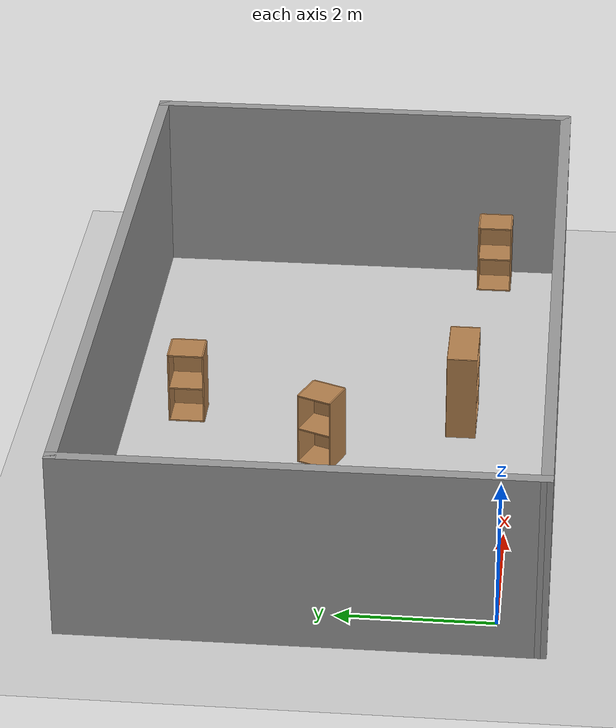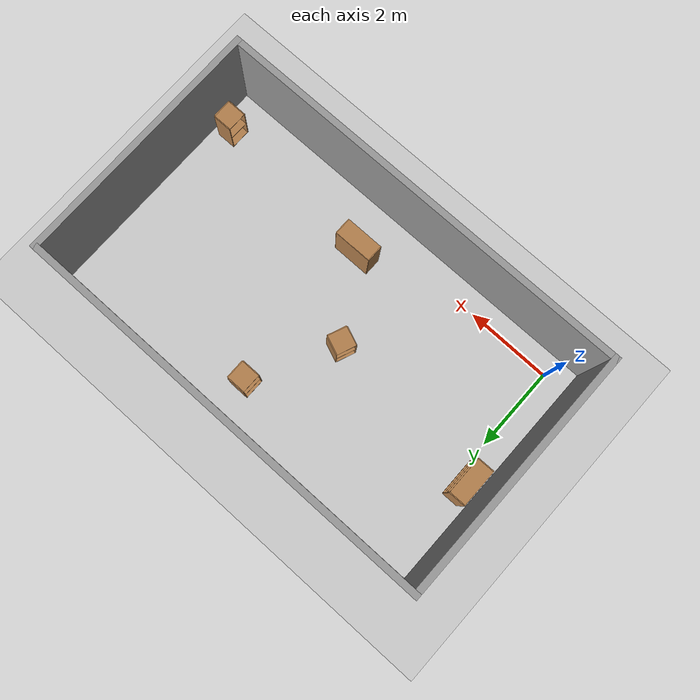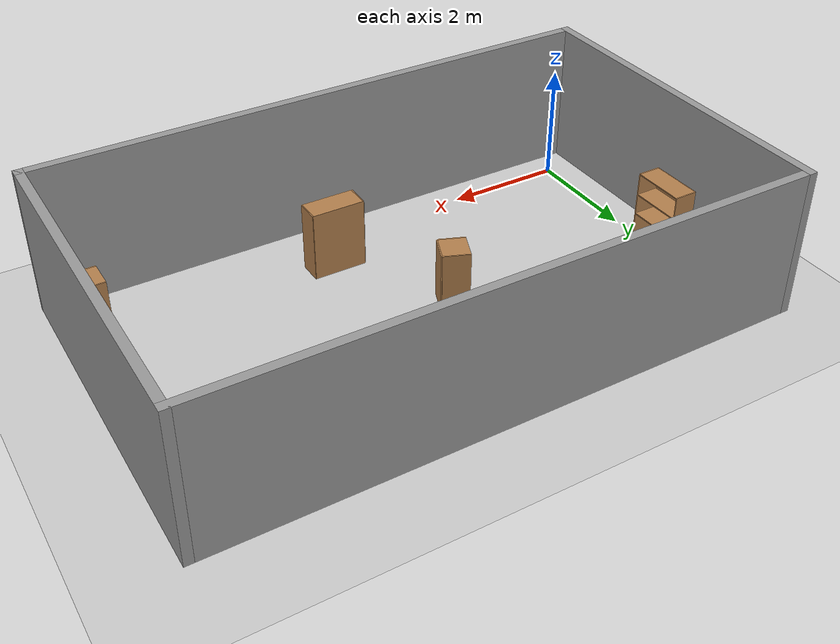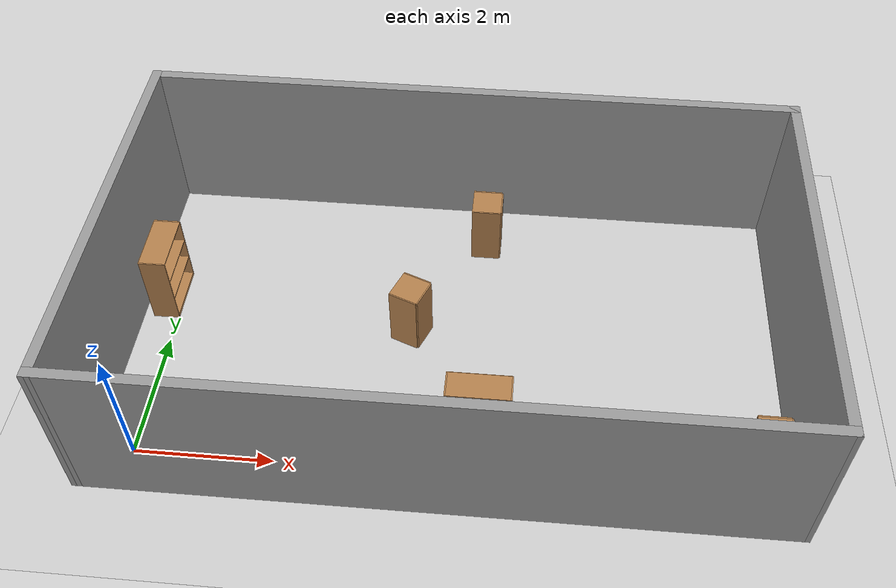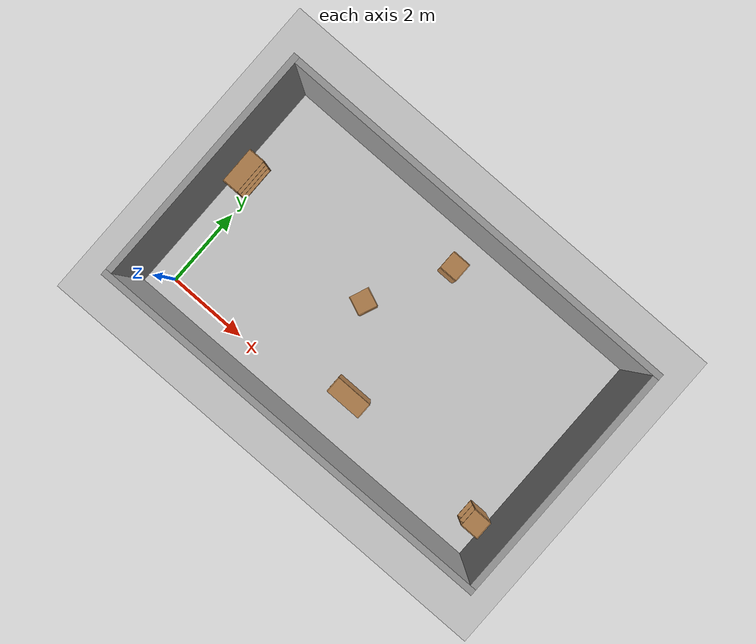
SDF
<sdf version="1.6">
 <world name="default">
  <light name="sun" type="directional">
   <pose>0 0 10 0 -0 0</pose>
   <diffuse>0.8 0.8 0.8 1</diffuse>
   <specular>0.2 0.2 0.2 1</specular>
   <attenuation>
    <range>1000</range>
    <constant>0.9</constant>
    <linear>0.01</linear>
    <quadratic>0.001</quadratic>
   </attenuation>
   <direction>-0.5 0.1 -0.9</direction>
  </light>
  <model name="ground_plane">
   <static>1</static>
   <link name="link">
    <collision name="collision">
     <geometry><plane><normal>0 0 1</normal><size>100 100</size></plane></geometry>
     <surface>
      <contact><collide_bitmask>65535</collide_bitmask></contact>
      <friction><ode><mu>100</mu><mu2>50</mu2></ode></friction>
     </surface>
    </collision>
    <visual name="visual">
     <cast_shadows>0</cast_shadows>
     <geometry><plane><normal>0 0 1</normal><size>100 100</size></plane></geometry>
     <material>
      <script><uri>file://media/materials/scripts/gazebo.material</uri><name>Gazebo/Grey</name></script>
     </material>
    </visual>
   </link>
  </model>
  <gravity>0 0 -9.8</gravity>
  <magnetic_field>6e-06 2.3e-05 -4.2e-05</magnetic_field>
  <atmosphere type="adiabatic"/>
  <physics name="default_physics" default="0" type="ode">
   <max_step_size>0.001</max_step_size>
   <real_time_factor>1</real_time_factor>
   <real_time_update_rate>1000</real_time_update_rate>
  </physics>
  <scene><ambient>0.4 0.4 0.4 1</ambient><background>0.7 0.7 0.7 1</background><shadows>1</shadows></scene>
  <spherical_coordinates>
   <surface_model>EARTH_WGS84</surface_model>
   <latitude_deg>0</latitude_deg>
   <longitude_deg>0</longitude_deg>
   <elevation>0</elevation>
   <heading_deg>0</heading_deg>
  </spherical_coordinates>
  <model name="big_home">
   <pose>4.31 2.3759 0 0 -0 0</pose>
   <link name="Wall_0">
    <collision name="Wall_0_Collision">
     <geometry><box><size>10 0.15 2.5</size></box></geometry>
     <pose>0 0 1.25 0 -0 0</pose>
    </collision>
    <visual name="Wall_0_Visual">
     <pose>0 0 1.25 0 -0 0</pose>
     <geometry><box><size>10 0.15 2.5</size></box></geometry>
     <material>
      <script><uri>file://media/materials/scripts/gazebo.material</uri><name>Gazebo/Grey</name></script>
      <ambient>1 1 1 1</ambient>
     </material>
     <meta><layer>0</layer></meta>
    </visual>
    <pose>0 -2.91241 0 0 -0 0.002538</pose>
   </link>
   <link name="Wall_13">
    <collision name="Wall_13_Collision">
     <geometry><box><size>6 0.15 2.5</size></box></geometry>
     <pose>0 0 1.25 0 -0 0</pose>
    </collision>
    <visual name="Wall_13_Visual">
     <pose>0 0 1.25 0 -0 0</pose>
     <geometry><box><size>6 0.15 2.5</size></box></geometry>
     <material>
      <script><uri>file://media/materials/scripts/gazebo.material</uri><name>Gazebo/Grey</name></script>
      <ambient>1 1 1 1</ambient>
     </material>
     <meta><layer>0</layer></meta>
    </visual>
    <pose>-4.925 9.5e-05 0 0 -0 1.5708</pose>
   </link>
   <link name="Wall_16">
    <collision name="Wall_16_Collision">
     <geometry><box><size>10 0.15 2.5</size></box></geometry>
     <pose>0 0 1.25 0 -0 0</pose>
    </collision>
    <visual name="Wall_16_Visual">
     <pose>0 0 1.25 0 -0 0</pose>
     <geometry><box><size>10 0.15 2.5</size></box></geometry>
     <material>
      <script><uri>file://media/materials/scripts/gazebo.material</uri><name>Gazebo/Grey</name></script>
      <ambient>1 1 1 1</ambient>
     </material>
     <meta><layer>0</layer></meta>
    </visual>
    <pose>0 2.92509 0 0 -0 0</pose>
   </link>
   <link name="Wall_18">
    <collision name="Wall_18_Collision">
     <geometry><box><size>5.975 0.15 2.5</size></box></geometry>
     <pose>0 0 1.25 0 -0 0</pose>
    </collision>
    <visual name="Wall_18_Visual">
     <pose>0 0 1.25 0 -0 0</pose>
     <geometry><box><size>5.975 0.15 2.5</size></box></geometry>
     <material>
      <script><uri>file://media/materials/scripts/gazebo.material</uri><name>Gazebo/Grey</name></script>
      <ambient>1 1 1 1</ambient>
     </material>
     <meta><layer>0</layer></meta>
    </visual>
    <pose>4.925 0.012595 0 0 0 -1.5708</pose>
   </link>
   <static>1</static>
  </model>
  <model name="bookshelf">
   <static>1</static>
   <link name="link">
    <inertial><mass>1</mass></inertial>
    <collision name="back">
     <pose>0 0.005 0.6 0 -0 0</pose>
     <geometry><box><size>0.9 0.01 1.2</size></box></geometry>
    </collision>
    <visual name="visual1">
     <pose>0 0.005 0.6 0 -0 0</pose>
     <geometry><box><size>0.9 0.01 1.2</size></box></geometry>
     <material>
      <script><uri>file://media/materials/scripts/gazebo.material</uri><name>Gazebo/Wood</name></script>
     </material>
    </visual>
    <collision name="left_side">
     <pose>0.45 -0.195 0.6 0 -0 0</pose>
     <geometry><box><size>0.02 0.4 1.2</size></box></geometry>
    </collision>
    <visual name="visual2">
     <pose>0.45 -0.195 0.6 0 -0 0</pose>
     <geometry><box><size>0.02 0.4 1.2</size></box></geometry>
     <material>
      <script><uri>file://media/materials/scripts/gazebo.material</uri><name>Gazebo/Wood</name></script>
     </material>
    </visual>
    <collision name="right_side">
     <pose>-0.45 -0.195 0.6 0 -0 0</pose>
     <geometry><box><size>0.02 0.4 1.2</size></box></geometry>
    </collision>
    <visual name="visual3">
     <pose>-0.45 -0.195 0.6 0 -0 0</pose>
     <geometry><box><size>0.02 0.4 1.2</size></box></geometry>
     <material>
      <script><uri>file://media/materials/scripts/gazebo.material</uri><name>Gazebo/Wood</name></script>
     </material>
    </visual>
    <collision name="bottom">
     <pose>0 -0.195 0.03 0 -0 0</pose>
     <geometry><box><size>0.88 0.4 0.06</size></box></geometry>
    </collision>
    <visual name="visual4">
     <pose>0 -0.195 0.03 0 -0 0</pose>
     <geometry><box><size>0.88 0.4 0.06</size></box></geometry>
     <material>
      <script><uri>file://media/materials/scripts/gazebo.material</uri><name>Gazebo/Wood</name></script>
     </material>
    </visual>
    <collision name="top">
     <pose>0 -0.195 1.19 0 -0 0</pose>
     <geometry><box><size>0.88 0.4 0.02</size></box></geometry>
    </collision>
    <visual name="visual5">
     <pose>0 -0.195 1.19 0 -0 0</pose>
     <geometry><box><size>0.88 0.4 0.02</size></box></geometry>
     <material>
      <script><uri>file://media/materials/scripts/gazebo.material</uri><name>Gazebo/Wood</name></script>
     </material>
    </visual>
    <collision name="low_shelf">
     <pose>0 -0.195 0.43 0 -0 0</pose>
     <geometry><box><size>0.88 0.4 0.02</size></box></geometry>
    </collision>
    <visual name="visual6">
     <pose>0 -0.195 0.43 0 -0 0</pose>
     <geometry><box><size>0.88 0.4 0.02</size></box></geometry>
     <material>
      <script><uri>file://media/materials/scripts/gazebo.material</uri><name>Gazebo/Wood</name></script>
     </material>
    </visual>
    <collision name="high_shelf">
     <pose>0 -0.195 0.8 0 -0 0</pose>
     <geometry><box><size>0.88 0.4 0.02</size></box></geometry>
    </collision>
    <visual name="visual7">
     <pose>0 -0.195 0.8 0 -0 0</pose>
     <geometry><box><size>0.88 0.4 0.02</size></box></geometry>
     <material>
      <script><uri>file://media/materials/scripts/gazebo.material</uri><name>Gazebo/Wood</name></script>
     </material>
    </visual>
   </link>
   <pose>4.80628 0.874231 0 0 -0 0</pose>
  </model>
  <model name="cabinet">
   <static>1</static>
   <link name="cabinet_bottom_plate">
    <inertial>
     <pose>0 0 -1 0 -0 0</pose>
     <inertia><ixx>2.05</ixx><ixy>0</ixy><ixz>0</ixz><iyy>2.05</iyy><iyz>0</iyz><izz>2.05</izz></inertia>
     <mass>25</mass>
    </inertial>
    <collision name="cabinet_bottom_plate_geom">
     <pose>0 0 0.01 0 -0 0</pose>
     <geometry><box><size>0.45 0.45 0.02</size></box></geometry>
    </collision>
    <visual name="cabinet_bottom_plate_geom_visual">
     <pose>0 0 0.01 0 -0 0</pose>
     <geometry><box><size>0.45 0.45 0.02</size></box></geometry>
     <material>
      <script><uri>file://media/materials/scripts/gazebo.material</uri><name>Gazebo/Wood</name></script>
     </material>
    </visual>
    <collision name="cabinet_bottom_plate_geom_cabinet_back_plate">
     <pose>0.235 0 0.51 0 -0 0</pose>
     <geometry><box><size>0.02 0.45 1.02</size></box></geometry>
    </collision>
    <visual name="cabinet_bottom_plate_geom_cabinet_back_plate_visual">
     <pose>0.235 0 0.51 0 -0 0</pose>
     <geometry><box><size>0.02 0.45 1.02</size></box></geometry>
     <material>
      <script><uri>file://media/materials/scripts/gazebo.material</uri><name>Gazebo/Wood</name></script>
     </material>
    </visual>
    <collision name="cabinet_bottom_plate_geom_cabinet_left_plate">
     <pose>0 0.235 0.51 0 -0 0</pose>
     <geometry><box><size>0.45 0.02 1.02</size></box></geometry>
    </collision>
    <visual name="cabinet_bottom_plate_geom_cabinet_left_plate_visual">
     <pose>0 0.235 0.51 0 -0 0</pose>
     <geometry><box><size>0.45 0.02 1.02</size></box></geometry>
     <material>
      <script><uri>file://media/materials/scripts/gazebo.material</uri><name>Gazebo/Wood</name></script>
     </material>
    </visual>
    <collision name="cabinet_bottom_plate_geom_cabinet_middle_plate">
     <pose>0 0 0.51 0 -0 0</pose>
     <geometry><box><size>0.45 0.45 0.02</size></box></geometry>
    </collision>
    <visual name="cabinet_bottom_plate_geom_cabinet_middle_plate_visual">
     <pose>0 0 0.51 0 -0 0</pose>
     <geometry><box><size>0.45 0.45 0.02</size></box></geometry>
     <material>
      <script><uri>file://media/materials/scripts/gazebo.material</uri><name>Gazebo/Wood</name></script>
     </material>
    </visual>
    <collision name="cabinet_bottom_plate_geom_cabinet_right_plate">
     <pose>0 -0.235 0.51 0 -0 0</pose>
     <geometry><box><size>0.45 0.02 1.02</size></box></geometry>
    </collision>
    <visual name="cabinet_bottom_plate_geom_cabinet_right_plate_visual">
     <pose>0 -0.235 0.51 0 -0 0</pose>
     <geometry><box><size>0.45 0.02 1.02</size></box></geometry>
     <material>
      <script><uri>file://media/materials/scripts/gazebo.material</uri><name>Gazebo/Wood</name></script>
     </material>
    </visual>
    <collision name="cabinet_bottom_plate_geom_cabinet_top_plate">
     <pose>0 0 1.01 0 -0 0</pose>
     <geometry><box><size>0.45 0.45 0.02</size></box></geometry>
    </collision>
    <visual name="cabinet_bottom_plate_geom_cabinet_top_plate_visual">
     <pose>0 0 1.01 0 -0 0</pose>
     <geometry><box><size>0.45 0.45 0.02</size></box></geometry>
     <material>
      <script><uri>file://media/materials/scripts/gazebo.material</uri><name>Gazebo/Wood</name></script>
     </material>
    </visual>
   </link>
   <pose>8.76538 0.420057 0 0 -0 0</pose>
  </model>
  <model name="cabinet_0">
   <static>1</static>
   <link name="cabinet_bottom_plate">
    <inertial>
     <pose>0 0 -1 0 -0 0</pose>
     <inertia><ixx>2.05</ixx><ixy>0</ixy><ixz>0</ixz><iyy>2.05</iyy><iyz>0</iyz><izz>2.05</izz></inertia>
     <mass>25</mass>
    </inertial>
    <collision name="cabinet_bottom_plate_geom">
     <pose>0 0 0.01 0 -0 0</pose>
     <geometry><box><size>0.45 0.45 0.02</size></box></geometry>
    </collision>
    <visual name="cabinet_bottom_plate_geom_visual">
     <pose>0 0 0.01 0 -0 0</pose>
     <geometry><box><size>0.45 0.45 0.02</size></box></geometry>
     <material>
      <script><uri>file://media/materials/scripts/gazebo.material</uri><name>Gazebo/Wood</name></script>
     </material>
    </visual>
    <collision name="cabinet_bottom_plate_geom_cabinet_back_plate">
     <pose>0.235 0 0.51 0 -0 0</pose>
     <geometry><box><size>0.02 0.45 1.02</size></box></geometry>
    </collision>
    <visual name="cabinet_bottom_plate_geom_cabinet_back_plate_visual">
     <pose>0.235 0 0.51 0 -0 0</pose>
     <geometry><box><size>0.02 0.45 1.02</size></box></geometry>
     <material>
      <script><uri>file://media/materials/scripts/gazebo.material</uri><name>Gazebo/Wood</name></script>
     </material>
    </visual>
    <collision name="cabinet_bottom_plate_geom_cabinet_left_plate">
     <pose>0 0.235 0.51 0 -0 0</pose>
     <geometry><box><size>0.45 0.02 1.02</size></box></geometry>
    </collision>
    <visual name="cabinet_bottom_plate_geom_cabinet_left_plate_visual">
     <pose>0 0.235 0.51 0 -0 0</pose>
     <geometry><box><size>0.45 0.02 1.02</size></box></geometry>
     <material>
      <script><uri>file://media/materials/scripts/gazebo.material</uri><name>Gazebo/Wood</name></script>
     </material>
    </visual>
    <collision name="cabinet_bottom_plate_geom_cabinet_middle_plate">
     <pose>0 0 0.51 0 -0 0</pose>
     <geometry><box><size>0.45 0.45 0.02</size></box></geometry>
    </collision>
    <visual name="cabinet_bottom_plate_geom_cabinet_middle_plate_visual">
     <pose>0 0 0.51 0 -0 0</pose>
     <geometry><box><size>0.45 0.45 0.02</size></box></geometry>
     <material>
      <script><uri>file://media/materials/scripts/gazebo.material</uri><name>Gazebo/Wood</name></script>
     </material>
    </visual>
    <collision name="cabinet_bottom_plate_geom_cabinet_right_plate">
     <pose>0 -0.235 0.51 0 -0 0</pose>
     <geometry><box><size>0.45 0.02 1.02</size></box></geometry>
    </collision>
    <visual name="cabinet_bottom_plate_geom_cabinet_right_plate_visual">
     <pose>0 -0.235 0.51 0 -0 0</pose>
     <geometry><box><size>0.45 0.02 1.02</size></box></geometry>
     <material>
      <script><uri>file://media/materials/scripts/gazebo.material</uri><name>Gazebo/Wood</name></script>
     </material>
    </visual>
    <collision name="cabinet_bottom_plate_geom_cabinet_top_plate">
     <pose>0 0 1.01 0 -0 0</pose>
     <geometry><box><size>0.45 0.45 0.02</size></box></geometry>
    </collision>
    <visual name="cabinet_bottom_plate_geom_cabinet_top_plate_visual">
     <pose>0 0 1.01 0 -0 0</pose>
     <geometry><box><size>0.45 0.45 0.02</size></box></geometry>
     <material>
      <script><uri>file://media/materials/scripts/gazebo.material</uri><name>Gazebo/Wood</name></script>
     </material>
    </visual>
   </link>
   <pose>4.67038 4.40308 0 0 -0 0</pose>
  </model>
  <model name="bookshelf_0">
   <static>1</static>
   <link name="link">
    <inertial><mass>1</mass></inertial>
    <collision name="back">
     <pose>0 0.005 0.6 0 -0 0</pose>
     <geometry><box><size>0.9 0.01 1.2</size></box></geometry>
    </collision>
    <visual name="visual1">
     <pose>0 0.005 0.6 0 -0 0</pose>
     <geometry><box><size>0.9 0.01 1.2</size></box></geometry>
     <material>
      <script><uri>file://media/materials/scripts/gazebo.material</uri><name>Gazebo/Wood</name></script>
     </material>
    </visual>
    <collision name="left_side">
     <pose>0.45 -0.195 0.6 0 -0 0</pose>
     <geometry><box><size>0.02 0.4 1.2</size></box></geometry>
    </collision>
    <visual name="visual2">
     <pose>0.45 -0.195 0.6 0 -0 0</pose>
     <geometry><box><size>0.02 0.4 1.2</size></box></geometry>
     <material>
      <script><uri>file://media/materials/scripts/gazebo.material</uri><name>Gazebo/Wood</name></script>
     </material>
    </visual>
    <collision name="right_side">
     <pose>-0.45 -0.195 0.6 0 -0 0</pose>
     <geometry><box><size>0.02 0.4 1.2</size></box></geometry>
    </collision>
    <visual name="visual3">
     <pose>-0.45 -0.195 0.6 0 -0 0</pose>
     <geometry><box><size>0.02 0.4 1.2</size></box></geometry>
     <material>
      <script><uri>file://media/materials/scripts/gazebo.material</uri><name>Gazebo/Wood</name></script>
     </material>
    </visual>
    <collision name="bottom">
     <pose>0 -0.195 0.03 0 -0 0</pose>
     <geometry><box><size>0.88 0.4 0.06</size></box></geometry>
    </collision>
    <visual name="visual4">
     <pose>0 -0.195 0.03 0 -0 0</pose>
     <geometry><box><size>0.88 0.4 0.06</size></box></geometry>
     <material>
      <script><uri>file://media/materials/scripts/gazebo.material</uri><name>Gazebo/Wood</name></script>
     </material>
    </visual>
    <collision name="top">
     <pose>0 -0.195 1.19 0 -0 0</pose>
     <geometry><box><size>0.88 0.4 0.02</size></box></geometry>
    </collision>
    <visual name="visual5">
     <pose>0 -0.195 1.19 0 -0 0</pose>
     <geometry><box><size>0.88 0.4 0.02</size></box></geometry>
     <material>
      <script><uri>file://media/materials/scripts/gazebo.material</uri><name>Gazebo/Wood</name></script>
     </material>
    </visual>
    <collision name="low_shelf">
     <pose>0 -0.195 0.43 0 -0 0</pose>
     <geometry><box><size>0.88 0.4 0.02</size></box></geometry>
    </collision>
    <visual name="visual6">
     <pose>0 -0.195 0.43 0 -0 0</pose>
     <geometry><box><size>0.88 0.4 0.02</size></box></geometry>
     <material>
      <script><uri>file://media/materials/scripts/gazebo.material</uri><name>Gazebo/Wood</name></script>
     </material>
    </visual>
    <collision name="high_shelf">
     <pose>0 -0.195 0.8 0 -0 0</pose>
     <geometry><box><size>0.88 0.4 0.02</size></box></geometry>
    </collision>
    <visual name="visual7">
     <pose>0 -0.195 0.8 0 -0 0</pose>
     <geometry><box><size>0.88 0.4 0.02</size></box></geometry>
     <material>
      <script><uri>file://media/materials/scripts/gazebo.material</uri><name>Gazebo/Wood</name></script>
     </material>
    </visual>
   </link>
   <pose>-0.384157 2.91639 0 0 -0 1.57562</pose>
  </model>
  <model name="cabinet_1">
   <static>1</static>
   <link name="cabinet_bottom_plate">
    <inertial>
     <pose>0 0 -1 0 -0 0</pose>
     <inertia><ixx>2.05</ixx><ixy>0</ixy><ixz>0</ixz><iyy>2.05</iyy><iyz>0</iyz><izz>2.05</izz></inertia>
     <mass>25</mass>
    </inertial>
    <collision name="cabinet_bottom_plate_geom">
     <pose>0 0 0.01 0 -0 0</pose>
     <geometry><box><size>0.45 0.45 0.02</size></box></geometry>
    </collision>
    <visual name="cabinet_bottom_plate_geom_visual">
     <pose>0 0 0.01 0 -0 0</pose>
     <geometry><box><size>0.45 0.45 0.02</size></box></geometry>
     <material>
      <script><uri>file://media/materials/scripts/gazebo.material</uri><name>Gazebo/Wood</name></script>
     </material>
    </visual>
    <collision name="cabinet_bottom_plate_geom_cabinet_back_plate">
     <pose>0.235 0 0.51 0 -0 0</pose>
     <geometry><box><size>0.02 0.45 1.02</size></box></geometry>
    </collision>
    <visual name="cabinet_bottom_plate_geom_cabinet_back_plate_visual">
     <pose>0.235 0 0.51 0 -0 0</pose>
     <geometry><box><size>0.02 0.45 1.02</size></box></geometry>
     <material>
      <script><uri>file://media/materials/scripts/gazebo.material</uri><name>Gazebo/Wood</name></script>
     </material>
    </visual>
    <collision name="cabinet_bottom_plate_geom_cabinet_left_plate">
     <pose>0 0.235 0.51 0 -0 0</pose>
     <geometry><box><size>0.45 0.02 1.02</size></box></geometry>
    </collision>
    <visual name="cabinet_bottom_plate_geom_cabinet_left_plate_visual">
     <pose>0 0.235 0.51 0 -0 0</pose>
     <geometry><box><size>0.45 0.02 1.02</size></box></geometry>
     <material>
      <script><uri>file://media/materials/scripts/gazebo.material</uri><name>Gazebo/Wood</name></script>
     </material>
    </visual>
    <collision name="cabinet_bottom_plate_geom_cabinet_middle_plate">
     <pose>0 0 0.51 0 -0 0</pose>
     <geometry><box><size>0.45 0.45 0.02</size></box></geometry>
    </collision>
    <visual name="cabinet_bottom_plate_geom_cabinet_middle_plate_visual">
     <pose>0 0 0.51 0 -0 0</pose>
     <geometry><box><size>0.45 0.45 0.02</size></box></geometry>
     <material>
      <script><uri>file://media/materials/scripts/gazebo.material</uri><name>Gazebo/Wood</name></script>
     </material>
    </visual>
    <collision name="cabinet_bottom_plate_geom_cabinet_right_plate">
     <pose>0 -0.235 0.51 0 -0 0</pose>
     <geometry><box><size>0.45 0.02 1.02</size></box></geometry>
    </collision>
    <visual name="cabinet_bottom_plate_geom_cabinet_right_plate_visual">
     <pose>0 -0.235 0.51 0 -0 0</pose>
     <geometry><box><size>0.45 0.02 1.02</size></box></geometry>
     <material>
      <script><uri>file://media/materials/scripts/gazebo.material</uri><name>Gazebo/Wood</name></script>
     </material>
    </visual>
    <collision name="cabinet_bottom_plate_geom_cabinet_top_plate">
     <pose>0 0 1.01 0 -0 0</pose>
     <geometry><box><size>0.45 0.45 0.02</size></box></geometry>
    </collision>
    <visual name="cabinet_bottom_plate_geom_cabinet_top_plate_visual">
     <pose>0 0 1.01 0 -0 0</pose>
     <geometry><box><size>0.45 0.45 0.02</size></box></geometry>
     <material>
      <script><uri>file://media/materials/scripts/gazebo.material</uri><name>Gazebo/Wood</name></script>
     </material>
    </visual>
   </link>
   <pose>3.65643 2.49049 0 0 0 -0.382941</pose>
  </model>
 </world>
</sdf>
